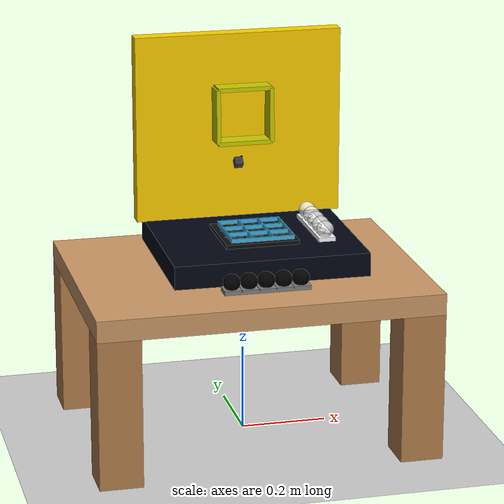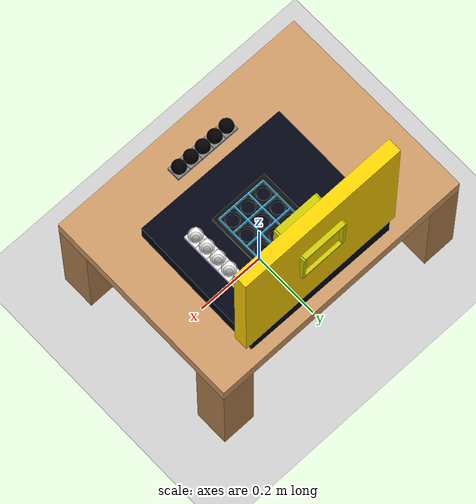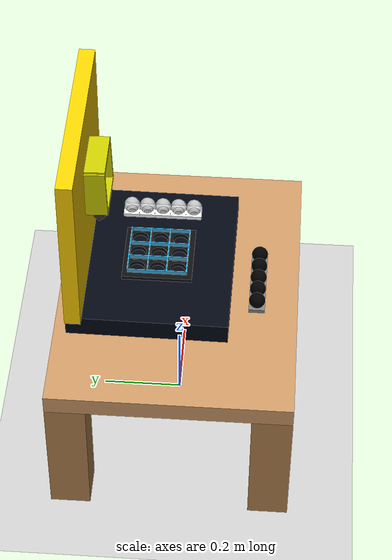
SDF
<sdf version="1.10">
 <world name="WORKINGPROTO">
  <physics name="1ms" type="ignored">
   <max_step_size>0.001</max_step_size>
   <real_time_factor>1</real_time_factor>
   <real_time_update_rate>1000</real_time_update_rate>
  </physics>
  <plugin name="gz::sim::systems::Physics" filename="gz-sim-physics-system"/>
  <plugin name="gz::sim::systems::UserCommands" filename="gz-sim-user-commands-system"/>
  <plugin name="gz::sim::systems::SceneBroadcaster" filename="gz-sim-scene-broadcaster-system"/>
  <plugin name="gz::sim::systems::Sensors" filename="gz-sim-sensors-system">
   <render_engine>ogre2</render_engine>
  </plugin>
  <plugin name="gz::sim::systems::ImageDisplay" filename="gz-sim-image-display-system"/>
  <gravity>0 0 -9.8000000000000007</gravity>
  <magnetic_field>5.5644999999999998e-06 2.2875799999999999e-05 -4.2388400000000002e-05</magnetic_field>
  <atmosphere type="adiabatic"/>
  <scene>
   <ambient>0.400000006 0.400000006 0.400000006 1</ambient>
   <background>0.699999988 0.699999988 0.699999988 1</background>
   <shadows>true</shadows>
  </scene>
  <model name="ground_plane">
   <static>true</static>
   <link name="link">
    <collision name="collision">
     <geometry><plane><normal>0 0 1</normal><size>100 100</size></plane></geometry>
     <surface>
      <contact><collide_bitmask>65535</collide_bitmask><ode><mu>100</mu><mu2>50</mu2></ode></contact>
      <friction><ode><mu>100</mu><mu2>50</mu2></ode></friction>
     </surface>
    </collision>
    <visual name="visual">
     <cast_shadows>false</cast_shadows>
     <geometry><plane><normal>0 0 1</normal><size>100 100</size></plane></geometry>
     <material>
      <ambient>0.800000012 0.800000012 0.800000012 1</ambient>
      <diffuse>0.800000012 0.800000012 0.800000012 1</diffuse>
      <specular>0 0 0 1</specular>
     </material>
    </visual>
    <inertial>
     <mass>1</mass>
     <inertia><ixx>1</ixx><ixy>0</ixy><ixz>0</ixz><iyy>1</iyy><iyz>0</iyz><izz>1</izz></inertia>
    </inertial>
   </link>
  </model>
  <model name="study_table">
   <static>true</static>
   <link name="table_link">
    <inertial>
     <mass>50</mass>
     <inertia><ixx>10</ixx><iyy>8</iyy><izz>6</izz><ixy>0</ixy><ixz>0</ixz><iyz>0</iyz></inertia>
    </inertial>
    <visual name="table_top">
     <pose>0 0 0.375 0 0 0</pose>
     <geometry><box><size>0.80000000000000004 0.59999999999999998 0.050000000000000003</size></box></geometry>
     <material>
      <ambient>0.800000012 0.600000024 0.400000006 1</ambient>
      <diffuse>0.800000012 0.600000024 0.400000006 1</diffuse>
     </material>
    </visual>
    <visual name="table_leg1">
     <pose>0.34999999999999998 0.25 0.17499999999999999 0 0 0</pose>
     <geometry><box><size>0.10000000000000001 0.10000000000000001 0.34999999999999998</size></box></geometry>
     <material>
      <ambient>0.699999988 0.5 0.300000012 1</ambient>
      <diffuse>0.699999988 0.5 0.300000012 1</diffuse>
     </material>
    </visual>
    <visual name="table_leg2">
     <pose>-0.34999999999999998 0.25 0.17499999999999999 0 0 0</pose>
     <geometry><box><size>0.10000000000000001 0.10000000000000001 0.34999999999999998</size></box></geometry>
     <material>
      <ambient>0.699999988 0.5 0.300000012 1</ambient>
      <diffuse>0.699999988 0.5 0.300000012 1</diffuse>
     </material>
    </visual>
    <visual name="table_leg3">
     <pose>0.34999999999999998 -0.25 0.17499999999999999 0 0 0</pose>
     <geometry><box><size>0.10000000000000001 0.10000000000000001 0.34999999999999998</size></box></geometry>
     <material>
      <ambient>0.699999988 0.5 0.300000012 1</ambient>
      <diffuse>0.699999988 0.5 0.300000012 1</diffuse>
     </material>
    </visual>
    <visual name="table_leg4">
     <pose>-0.34999999999999998 -0.25 0.17499999999999999 0 0 0</pose>
     <geometry><box><size>0.10000000000000001 0.10000000000000001 0.34999999999999998</size></box></geometry>
     <material>
      <ambient>0.699999988 0.5 0.300000012 1</ambient>
      <diffuse>0.699999988 0.5 0.300000012 1</diffuse>
     </material>
    </visual>
    <collision name="table_collision">
     <pose>0 0 0.375 0 0 0</pose>
     <geometry><box><size>0.80000000000000004 0.59999999999999998 0.050000000000000003</size></box></geometry>
    </collision>
   </link>
  </model>
  <model name="guard_rail">
   <static>true</static>
   <pose>-0.052531500000000002 -0.040552699999999997 0.435197 0 0 0</pose>
   <link name="rail_link">
    <inertial>
     <mass>10</mass>
     <inertia><ixx>1</ixx><iyy>1</iyy><izz>1</izz><ixy>0</ixy><ixz>0</ixz><iyz>0</iyz></inertia>
    </inertial>
    <visual name="rail_visual">
     <geometry>
      <mesh>
       <scale>0.001 0.001 0.001</scale>
       <uri>file:///home/sukritchopra/ros2_ws/src/jetrover_description/models/jetrover/meshes_1/EXTERNAL_MESHES/GUARD_RAILS6.stl</uri>
      </mesh>
     </geometry>
     <material>
      <ambient>0.235294119 0.70588237 0.90196079 1</ambient>
      <diffuse>0.235294119 0.70588237 0.90196079 1</diffuse>
     </material>
    </visual>
    <collision name="rail_collision">
     <geometry>
      <mesh>
       <scale>0.001 0.001 0.001</scale>
       <uri>file:///home/sukritchopra/ros2_ws/src/jetrover_description/models/jetrover/meshes_1/EXTERNAL_MESHES/GUARD_RAILS6.stl</uri>
      </mesh>
     </geometry>
    </collision>
   </link>
  </model>
  <model name="wall">
   <static>true</static>
   <pose>0.044432800263166428 0.24772383272647858 0.82922697067260742 0 0 0</pose>
   <link name="wall_link">
    <inertial>
     <mass>20000000</mass>
     <inertia>
      <ixx>1.6699999999999999</ixx>
      <iyy>2.6699999999999999</iyy>
      <izz>1.0700000000000001</izz>
      <ixy>0</ixy>
      <ixz>0</ixz>
      <iyz>0</iyz>
     </inertia>
    </inertial>
    <visual name="wall_base">
     <pose>0 0 -0.14999999999999999 0 0 0</pose>
     <geometry><box><size>0.49999999999999778 0.040000000000000001 0.44999999999999979</size></box></geometry>
     <material><ambient>1 0.824000001 0 1</ambient><diffuse>1 0.824000001 0 1</diffuse></material>
    </visual>
    <collision name="wall_base_collision">
     <pose>0 0 -0.14999999999999999 0 0 0</pose>
     <geometry><box><size>0.49999999999999978 0.040000000000000001 0.44999999999999979</size></box></geometry>
    </collision>
   </link>
  </model>
  <model name="enclosure_floor">
   <static>true</static>
   <pose>0.19129599999999999 0.064957200000000007 0.425506 1.5700000000000003 -7.7423200004696731e-06 1.5605700000000007</pose>
   <link name="enclosure_floor_link">
    <inertial>
     <mass>20000000</mass>
     <inertia>
      <ixx>1.6699999999999999</ixx>
      <iyy>2.6699999999999999</iyy>
      <izz>1.0700000000000001</izz>
      <ixy>0</ixy>
      <ixz>0</ixz>
      <iyz>0</iyz>
     </inertia>
    </inertial>
    <visual name="enclosure_floor_base">
     <pose>0 0 -0.14999999999999999 0 0 0</pose>
     <geometry><box><size>0.3999999999999998 0.060000000000000005 0.46000000000000002</size></box></geometry>
     <material>
      <ambient>0 0.00400000019 0.0149999997 1</ambient>
      <diffuse>0.00400000019 0.0199999996 0.0700000003 1</diffuse>
     </material>
    </visual>
    <collision name="enclosure_floor_base_collision">
     <pose>0 0 -0.14999999999999999 0 0 0</pose>
     <geometry><box><size>0.3999999999999998 0.060000000000000005 0.46000000000000002</size></box></geometry>
    </collision>
   </link>
  </model>
  <model name="tictactoe_game">
   <static>true</static>
   <pose>-0.046944 -0.032551099999999999 0.449874 8.8383404715047097e-08 9.0853604856917646e-07 -0.00040046502140793193</pose>
   <link name="board">
    <inertial>
     <mass>2</mass>
     <inertia>
      <ixx>0.10000000000000001</ixx>
      <iyy>0.10000000000000001</iyy>
      <izz>0.10000000000000001</izz>
      <ixy>0</ixy>
      <ixz>0</ixz>
      <iyz>0</iyz>
     </inertia>
    </inertial>
    <visual name="board_visual">
     <geometry>
      <mesh>
       <scale>0.001 0.001 0.001</scale>
       <uri>file:///home/sukritchopra/ros2_ws/src/jetrover_description/models/jetrover/meshes_1/EXTERNAL_MESHES/tictactoe_board3.stl</uri>
      </mesh>
     </geometry>
     <material>
      <ambient>0.0500000007 0.0500000007 0.0500000007 1</ambient>
      <diffuse>0.0500000007 0.0500000007 0.0500000007 1</diffuse>
     </material>
    </visual>
    <collision name="board_collision">
     <geometry>
      <mesh>
       <scale>0.001 0.001 0.001</scale>
       <uri>file:///home/sukritchopra/ros2_ws/src/jetrover_description/models/jetrover/meshes_1/EXTERNAL_MESHES/tictactoe_board3.stl</uri>
      </mesh>
     </geometry>
    </collision>
   </link>
  </model>
  <model name="o_piece_1">
   <static>false</static>
   <pose>0.085922235882675432 -0.19898866163794843 0.43195285692321866 -1.8338060335185091 0.35823291662066714 0.79342201981471638</pose>
   <link name="o_link">
    <inertial>
     <mass>0.0027000000000000001</mass>
     <inertia>
      <ixx>1.0000000000000001e-05</ixx>
      <iyy>1.0000000000000001e-05</iyy>
      <izz>1.0000000000000001e-05</izz>
      <ixy>0</ixy>
      <ixz>0</ixz>
      <iyz>0</iyz>
     </inertia>
    </inertial>
    <visual name="o_visual">
     <geometry><sphere><radius>0.02</radius></sphere></geometry>
     <material><ambient>0 0 0 1</ambient><diffuse>0 0 0 1</diffuse></material>
    </visual>
    <collision name="o_collision"><geometry><sphere><radius>0.02</radius></sphere></geometry></collision>
   </link>
  </model>
  <model name="o_piece_2">
   <static>false</static>
   <pose>0.0059233133003997341 -0.19857245584603733 0.43195286529098115 -1.1600662451198234 1.5256763797631148 1.0027121642090358</pose>
   <link name="o_link">
    <inertial>
     <mass>0.0027000000000000001</mass>
     <inertia>
      <ixx>1.0000000000000001e-05</ixx>
      <iyy>1.0000000000000001e-05</iyy>
      <izz>1.0000000000000001e-05</izz>
      <ixy>0</ixy>
      <ixz>0</ixz>
      <iyz>0</iyz>
     </inertia>
    </inertial>
    <visual name="o_visual">
     <geometry><sphere><radius>0.02</radius></sphere></geometry>
     <material><ambient>0 0 0 1</ambient><diffuse>0 0 0 1</diffuse></material>
    </visual>
    <collision name="o_collision"><geometry><sphere><radius>0.02</radius></sphere></geometry></collision>
   </link>
  </model>
  <model name="o_piece_3">
   <static>false</static>
   <pose>-0.074075605116429619 -0.19815625290456343 0.43195287770334972 -1.0419118478844027 -0.14607008778276592 3.044122229486228</pose>
   <link name="o_link">
    <inertial>
     <mass>0.0027000000000000001</mass>
     <inertia>
      <ixx>1.0000000000000001e-05</ixx>
      <iyy>1.0000000000000001e-05</iyy>
      <izz>1.0000000000000001e-05</izz>
      <ixy>0</ixy>
      <ixz>0</ixz>
      <iyz>0</iyz>
     </inertia>
    </inertial>
    <visual name="o_visual">
     <geometry><sphere><radius>0.02</radius></sphere></geometry>
     <material><ambient>0 0 0 1</ambient><diffuse>0 0 0 1</diffuse></material>
    </visual>
    <collision name="o_collision"><geometry><sphere><radius>0.02</radius></sphere></geometry></collision>
   </link>
  </model>
  <model name="o_piece_4">
   <static>false</static>
   <pose>0.045922767542344825 -0.19878056869830257 0.43195287938425642 2.4439442460567777 0.013313142359254942 2.286080601886058</pose>
   <link name="o_link">
    <inertial>
     <mass>0.0027000000000000001</mass>
     <inertia>
      <ixx>1.0000000000000001e-05</ixx>
      <iyy>1.0000000000000001e-05</iyy>
      <izz>1.0000000000000001e-05</izz>
      <ixy>0</ixy>
      <ixz>0</ixz>
      <iyz>0</iyz>
     </inertia>
    </inertial>
    <visual name="o_visual">
     <geometry><sphere><radius>0.02</radius></sphere></geometry>
     <material><ambient>0 0 0 1</ambient><diffuse>0 0 0 1</diffuse></material>
    </visual>
    <collision name="o_collision"><geometry><sphere><radius>0.02</radius></sphere></geometry></collision>
   </link>
  </model>
  <model name="o_piece_5">
   <static>false</static>
   <pose>-0.034076147058750936 -0.19836435815970491 0.43195287581162145 -2.3661598279109062 -0.95966009947263653 -1.9010092638363878</pose>
   <link name="o_link">
    <inertial>
     <mass>0.0027000000000000001</mass>
     <inertia>
      <ixx>1.0000000000000001e-05</ixx>
      <iyy>1.0000000000000001e-05</iyy>
      <izz>1.0000000000000001e-05</izz>
      <ixy>0</ixy>
      <ixz>0</ixz>
      <iyz>0</iyz>
     </inertia>
    </inertial>
    <visual name="o_visual">
     <geometry><sphere><radius>0.02</radius></sphere></geometry>
     <material><ambient>0 0 0 1</ambient><diffuse>0 0 0 1</diffuse></material>
    </visual>
    <collision name="o_collision"><geometry><sphere><radius>0.02</radius></sphere></geometry></collision>
   </link>
  </model>
  <model name="robot_box">
   <static>true</static>
   <pose>0.048892199993133545 0.22745649516582489 0.71249067783355702 1.5400002335725291 0 0</pose>
   <link name="box_link">
    <inertial>
     <mass>5</mass>
     <inertia>
      <ixx>0.10000000000000001</ixx>
      <iyy>0.10000000000000001</iyy>
      <izz>0.10000000000000001</izz>
      <ixy>0</ixy>
      <ixz>0</ixz>
      <iyz>0</iyz>
     </inertia>
    </inertial>
    <visual name="front_wall">
     <pose>0.065000000000000002 0 0 0 0 0</pose>
     <geometry><box><size>0.01 0.13 0.105</size></box></geometry>
     <material>
      <ambient>0.800000012 0.800000012 3.00000003e-09 1</ambient>
      <diffuse>0.800000012 0.800000012 3.00000003e-09 1</diffuse>
     </material>
    </visual>
    <collision name="front_wall_collision">
     <pose>0.065000000000000002 0 0 0 0 0</pose>
     <geometry><box><size>0.01 0.13 0.105</size></box></geometry>
    </collision>
    <visual name="back_wall">
     <pose>-0.065000000000000002 0 0 0 0 0</pose>
     <geometry><box><size>0.01 0.13 0.105</size></box></geometry>
     <material>
      <ambient>0.800000012 0.800000012 3.00000003e-09 1</ambient>
      <diffuse>0.800000012 0.800000012 3.00000003e-09 1</diffuse>
     </material>
    </visual>
    <collision name="back_wall_collision">
     <pose>-0.065000000000000002 0 0 0 0 0</pose>
     <geometry><box><size>0.01 0.13 0.105</size></box></geometry>
    </collision>
    <visual name="left_wall">
     <pose>0 0.065000000000000002 0 0 0 0</pose>
     <geometry><box><size>0.13 0.01 0.105</size></box></geometry>
     <material>
      <ambient>0.800000012 0.800000072 3.00000003e-09 1</ambient>
      <diffuse>0.800000012 0.800000012 3.00000003e-09 1</diffuse>
     </material>
    </visual>
    <collision name="left_wall_collision">
     <pose>0 0.065000000000000002 0 0 0 0</pose>
     <geometry><box><size>0.13 0.01 0.105</size></box></geometry>
    </collision>
    <visual name="right_wall">
     <pose>0 -0.065000000000000002 0 0 0 0</pose>
     <geometry><box><size>0.13 0.01 0.105</size></box></geometry>
     <material>
      <ambient>0.800000012 0.800000012 3.00000003e-09 1</ambient>
      <diffuse>0.800000012 0.800000012 3.00000003e-09 1</diffuse>
     </material>
    </visual>
    <collision name="right_wall_collision">
     <pose>0 -0.065000000000000002 0 0 0 0</pose>
     <geometry><box><size>0.13 0.01 0.105</size></box></geometry>
    </collision>
   </link>
  </model>
  <model name="x_piece_1">
   <static>false</static>
   <pose>0.19101318481172083 0.016357709845841121 0.4846898791957801 -2.3253469316237685 -0.30230054959631253 2.9930535416695507</pose>
   <link name="x_link">
    <inertial>
     <mass>0.0027000000000000001</mass>
     <inertia>
      <ixx>1.0000000000000001e-05</ixx>
      <iyy>1.0000000000000001e-05</iyy>
      <izz>1.0000000000000001e-05</izz>
      <ixy>0</ixy>
      <ixz>0</ixz>
      <iyz>0</iyz>
     </inertia>
    </inertial>
    <visual name="x_visual">
     <geometry><sphere><radius>0.02</radius></sphere></geometry>
     <material><ambient>1 1 1 0.800000012</ambient><diffuse>1 1 1 0.800000012</diffuse></material>
    </visual>
    <collision name="x_collision"><geometry><sphere><radius>0.02</radius></sphere></geometry></collision>
   </link>
  </model>
  <model name="x_piece_2">
   <static>false</static>
   <pose>0.19097609387063857 0.096357691509161153 0.48468986303600281 -2.6126158393206458 1.125839538683657 2.9193034986721806</pose>
   <link name="x_link">
    <inertial>
     <mass>0.0027000000000000001</mass>
     <inertia>
      <ixx>1.0000000000000001e-05</ixx>
      <iyy>1.0000000000000001e-05</iyy>
      <izz>1.0000000000000001e-05</izz>
      <ixy>0</ixy>
      <ixz>0</ixz>
      <iyz>0</iyz>
     </inertia>
    </inertial>
    <visual name="x_visual">
     <geometry><sphere><radius>0.02</radius></sphere></geometry>
     <material><ambient>1 1 1 0.800000012</ambient><diffuse>1 1 1 0.800000012</diffuse></material>
    </visual>
    <collision name="x_collision"><geometry><sphere><radius>0.02</radius></sphere></geometry></collision>
   </link>
  </model>
  <model name="x_piece_3">
   <static>false</static>
   <pose>0.19095755927727345 0.1363576883646847 0.48468985494175032 -2.5300725656514134 0.51930940656081181 -2.6385079247043572</pose>
   <link name="x_link">
    <inertial>
     <mass>0.0027000000000000001</mass>
     <inertia>
      <ixx>1.0000000000000001e-05</ixx>
      <iyy>1.0000000000000001e-05</iyy>
      <izz>1.0000000000000001e-05</izz>
      <ixy>0</ixy>
      <ixz>0</ixz>
      <iyz>0</iyz>
     </inertia>
    </inertial>
    <visual name="x_visual">
     <geometry><sphere><radius>0.02</radius></sphere></geometry>
     <material><ambient>1 1 1 0.800000012</ambient><diffuse>1 1 1 0.800000012</diffuse></material>
    </visual>
    <collision name="x_collision"><geometry><sphere><radius>0.02</radius></sphere></geometry></collision>
   </link>
  </model>
  <model name="x_piece_4">
   <static>false</static>
   <pose>0.19103174387148719 -0.023642293337203916 0.48468985692304234 -2.4624949980599649 0.56213637148073714 1.1269603397656365</pose>
   <link name="x_link">
    <inertial>
     <mass>0.0027000000000000001</mass>
     <inertia>
      <ixx>1.0000000000000001e-05</ixx>
      <iyy>1.0000000000000001e-05</iyy>
      <izz>1.0000000000000001e-05</izz>
      <ixy>0</ixy>
      <ixz>0</ixz>
      <iyz>0</iyz>
     </inertia>
    </inertial>
    <visual name="x_visual">
     <geometry><sphere><radius>0.02</radius></sphere></geometry>
     <material><ambient>1 1 1 0.800000012</ambient><diffuse>1 1 1 0.800000012</diffuse></material>
    </visual>
    <collision name="x_collision"><geometry><sphere><radius>0.02</radius></sphere></geometry></collision>
   </link>
  </model>
  <model name="x_piece_5">
   <static>false</static>
   <pose>0.19099464687529016 0.056357700528138932 0.48468986210825538 -3.0244266207747175 0.28947613535259609 2.9625508248660646</pose>
   <link name="x_link">
    <inertial>
     <mass>0.0027000000000000001</mass>
     <inertia>
      <ixx>1.0000000000000001e-05</ixx>
      <iyy>1.0000000000000001e-05</iyy>
      <izz>1.0000000000000001e-05</izz>
      <ixy>0</ixy>
      <ixz>0</ixz>
      <iyz>0</iyz>
     </inertia>
    </inertial>
    <visual name="x_visual">
     <geometry><sphere><radius>0.02</radius></sphere></geometry>
     <material><ambient>1 1 1 0.800000012</ambient><diffuse>1 1 1 0.800000012</diffuse></material>
    </visual>
    <collision name="x_collision"><geometry><sphere><radius>0.02</radius></sphere></geometry></collision>
   </link>
  </model>
  <model name="ball_store_grey">
   <static>true</static>
   <pose>0.106026 -0.179093 0.40764299999999998 0 0 3.13639</pose>
   <link name="ball_store_link">
    <inertial>
     <mass>1</mass>
     <inertia>
      <ixx>0.10000000000000001</ixx>
      <iyy>0.10000000000000001</iyy>
      <izz>0.10000000000000001</izz>
      <ixy>0</ixy>
      <ixz>0</ixz>
      <iyz>0</iyz>
     </inertia>
    </inertial>
    <visual name="ball_store_visual">
     <geometry>
      <mesh>
       <scale>0.001 0.001 0.001</scale>
       <uri>file:///home/sukritchopra/ros2_ws/src/jetrover_description/models/jetrover/meshes_1/EXTERNAL_MESHES/BALLSTORE2.stl</uri>
      </mesh>
     </geometry>
     <material><ambient>0.5 0.5 0.5 1</ambient><diffuse>0.5 0.5 0.5 1</diffuse></material>
    </visual>
    <collision name="ball_store_collision">
     <geometry>
      <mesh>
       <scale>0.001 0.001 0.001</scale>
       <uri>file:///home/sukritchopra/ros2_ws/src/jetrover_description/models/jetrover/meshes_1/EXTERNAL_MESHES/BALLSTORE2.stl</uri>
      </mesh>
     </geometry>
    </collision>
   </link>
  </model>
  <model name="ball_store_white">
   <static>true</static>
   <pose>0.21104100000000001 -0.043632999999999998 0.46038000000000001 0 0 1.5712600000000003</pose>
   <link name="ball_store_link">
    <inertial>
     <mass>1</mass>
     <inertia>
      <ixx>0.10000000000000001</ixx>
      <iyy>0.10000000000000001</iyy>
      <izz>0.10000000000000001</izz>
      <ixy>0</ixy>
      <ixz>0</ixz>
      <iyz>0</iyz>
     </inertia>
    </inertial>
    <visual name="ball_store_visual">
     <geometry>
      <mesh>
       <scale>0.001 0.001 0.001</scale>
       <uri>file:///home/sukritchopra/ros2_ws/src/jetrover_description/models/jetrover/meshes_1/EXTERNAL_MESHES/BALLSTORE2.stl</uri>
      </mesh>
     </geometry>
     <material><ambient>1 1 1 1</ambient><diffuse>1 1 1 1</diffuse></material>
    </visual>
    <collision name="ball_store_collision">
     <geometry>
      <mesh>
       <scale>0.001 0.001 0.001</scale>
       <uri>file:///home/sukritchopra/ros2_ws/src/jetrover_description/models/jetrover/meshes_1/EXTERNAL_MESHES/BALLSTORE2.stl</uri>
      </mesh>
     </geometry>
    </collision>
   </link>
  </model>
  <model name="overhead_camera">
   <static>true</static>
   <pose>0.036840200424194336 0.20014800131320953 0.5957069993019104 0.021799506252814953 -0.7330293231808428 -1.576377491649319</pose>
   <link name="camera_housing">
    <inertial>
     <mass>0.050000000000000003</mass>
     <inertia><ixx>0.0001</ixx><iyy>0.0001</iyy><izz>0.0001</izz><ixy>0</ixy><ixz>0</ixz><iyz>0</iyz></inertia>
    </inertial>
    <visual name="camera_body">
     <geometry><box><size>0.02 0.02 0.02</size></box></geometry>
     <material>
      <ambient>0.100000001 0.100000001 0.100000001 1</ambient>
      <diffuse>0.200000003 0.200000003 0.200000003 1</diffuse>
      <specular>0.100000001 0.100000001 0.100000001 1</specular>
     </material>
    </visual>
    <visual name="camera_lens">
     <pose>0.0080000000000000002 0.0080000000000000002 0.010999999999999999 0 0 0</pose>
     <geometry><cylinder><radius>0.0030000000000000001</radius><length>0.001</length></cylinder></geometry>
     <material>
      <ambient>0 0 0 1</ambient>
      <diffuse>0.100000001 0.100000001 0.300000012 1</diffuse>
      <specular>0.5 0.5 0.800000012 1</specular>
     </material>
    </visual>
    <visual name="led_indicator">
     <pose>-0.0080000000000000002 -0.0080000000000000002 0.010999999999999999 0 0 0</pose>
     <geometry><sphere><radius>0.001</radius></sphere></geometry>
     <material><ambient>0 1 0 1</ambient><diffuse>0 1 0 1</diffuse><specular>0.5 1 0.5 1</specular></material>
    </visual>
    <collision name="camera_collision"><geometry><box><size>0.02 0.02 0.02</size></box></geometry></collision>
    <sensor name="workspace_camera" type="camera">
     <pose>0 0 -0.0050000000000000001 3.1415899999999999 1.5707900000629724 3.1415899999999999</pose>
     <topic>/camera/image</topic>
     <update_rate>30</update_rate>
     <enable_metrics>false</enable_metrics>
     <camera>
      <horizontal_fov>1.518</horizontal_fov>
      <image>
       <width>1920</width>
       <height>1080</height>
       <format>RGB_INT8</format>
       <anti_aliasing>4</anti_aliasing>
      </image>
      <camera_info_topic>__default__</camera_info_topic>
      <triggered>false</triggered>
      <clip><near>0.10000000000000001</near><far>10</far></clip>
      <save enabled="true"><path>/tmp/camera_save_tutorial</path></save>
      <visibility_mask>4294967295</visibility_mask>
      <noise><type>none</type><mean>0</mean><stddev>0</stddev></noise>
      <distortion><k1>0</k1><k2>0</k2><k3>0</k3><p1>0</p1><p2>0</p2><center>0.5 0.5</center></distortion>
      <lens>
       <type>stereographic</type>
       <scale_to_hfov>true</scale_to_hfov>
       <cutoff_angle>1.5707963267948966</cutoff_angle>
       <env_texture_size>256</env_texture_size>
      </lens>
     </camera>
    </sensor>
   </link>
  </model>
  <light name="sun" type="directional">
   <pose>0 0 10 0 0 0</pose>
   <intensity>1</intensity>
   <direction>-0.5 0.10000000000000001 -0.90000000000000002</direction>
   <diffuse>0.800000012 0.800000012 0.800000012 1</diffuse>
   <specular>0.200000003 0.200000003 0.200000003 1</specular>
   <attenuation>
    <range>1000</range>
    <linear>0.0099999997764825821</linear>
    <constant>0.89999997615814209</constant>
    <quadratic>0.0010000000474974513</quadratic>
   </attenuation>
   <spot><inner_angle>0</inner_angle><outer_angle>0</outer_angle><falloff>0</falloff></spot>
  </light>
 </world>
</sdf>
